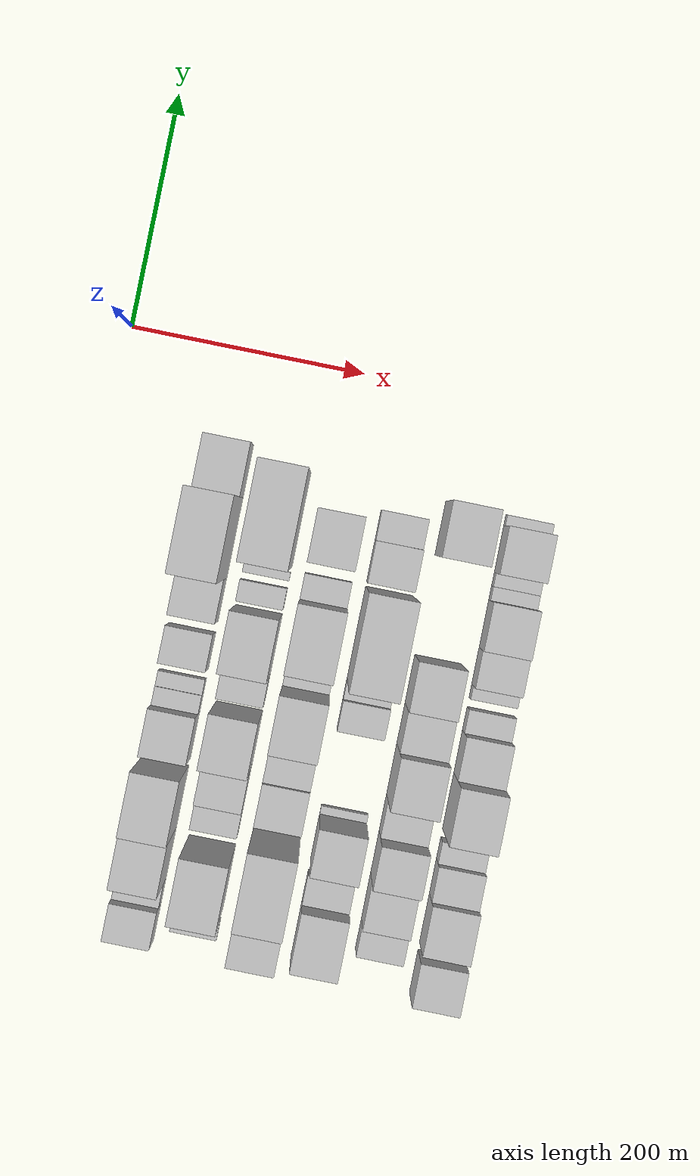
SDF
<sdf version="1.6">
 <world name="default">
  <model name="building_13">
   <static>1</static>
   <pose>100.0000 -486.7748 0 0.000000 0.000000 0.000000</pose>
   <link name="link">
    <pose>0 0 30.00 0 0 0</pose>
    <collision name="collision"><geometry><box><size>40.0000 31.7679 60.0000</size></box></geometry></collision>
    <visual name="visual">
     <cast_shadows>0</cast_shadows>
     <geometry><box><size>40.0000 31.7679 60.0000</size></box></geometry>
     <material>
      <script>
       <uri>model://HANNAS_wall/materials/scripts</uri>
       <uri>model://HANNAS_wall/materials/textures</uri>
       <name>vrc/HANNAS_wall</name>
      </script>
     </material>
    </visual>
   </link>
  </model>
  <model name="building_14">
   <static>1</static>
   <pose>100.0000 -460.5717 0 0.000000 0.000000 0.000000</pose>
   <link name="link">
    <pose>0 0 18.00 0 0 0</pose>
    <collision name="collision"><geometry><box><size>40.0000 20.6384 36.0000</size></box></geometry></collision>
    <visual name="visual">
     <cast_shadows>0</cast_shadows>
     <geometry><box><size>40.0000 20.6384 36.0000</size></box></geometry>
     <material>
      <script>
       <uri>model://HANNAS_wall/materials/scripts</uri>
       <uri>model://HANNAS_wall/materials/textures</uri>
       <name>vrc/HANNAS_wall</name>
      </script>
     </material>
    </visual>
   </link>
  </model>
  <model name="building_15">
   <static>1</static>
   <pose>100.0000 -428.2178 0 0.000000 0.000000 0.000000</pose>
   <link name="link">
    <pose>0 0 61.50 0 0 0</pose>
    <collision name="collision"><geometry><box><size>40.0000 44.0692 123.0000</size></box></geometry></collision>
    <visual name="visual">
     <cast_shadows>0</cast_shadows>
     <geometry><box><size>40.0000 44.0692 123.0000</size></box></geometry>
     <material>
      <script>
       <uri>model://HANNAS_wall/materials/scripts</uri>
       <uri>model://HANNAS_wall/materials/textures</uri>
       <name>vrc/HANNAS_wall</name>
      </script>
     </material>
    </visual>
   </link>
  </model>
  <model name="building_16">
   <static>1</static>
   <pose>100.0000 -379.6104 0 0.000000 0.000000 0.000000</pose>
   <link name="link">
    <pose>0 0 69.00 0 0 0</pose>
    <collision name="collision"><geometry><box><size>40.0000 53.1457 138.0000</size></box></geometry></collision>
    <visual name="visual">
     <cast_shadows>0</cast_shadows>
     <geometry><box><size>40.0000 53.1457 138.0000</size></box></geometry>
     <material>
      <script>
       <uri>model://HANNAS_wall/materials/scripts</uri>
       <uri>model://HANNAS_wall/materials/textures</uri>
       <name>vrc/HANNAS_wall</name>
      </script>
     </material>
    </visual>
   </link>
  </model>
  <model name="building_17">
   <static>1</static>
   <pose>100.0000 -327.0697 0 0.000000 0.000000 0.000000</pose>
   <link name="link">
    <pose>0 0 36.00 0 0 0</pose>
    <collision name="collision"><geometry><box><size>40.0000 39.9357 72.0000</size></box></geometry></collision>
    <visual name="visual">
     <cast_shadows>0</cast_shadows>
     <geometry><box><size>40.0000 39.9357 72.0000</size></box></geometry>
     <material>
      <script>
       <uri>model://HANNAS_wall/materials/scripts</uri>
       <uri>model://HANNAS_wall/materials/textures</uri>
       <name>vrc/HANNAS_wall</name>
      </script>
     </material>
    </visual>
   </link>
  </model>
  <model name="building_18">
   <static>1</static>
   <pose>100.0000 -299.0526 0 0.000000 0.000000 0.000000</pose>
   <link name="link">
    <pose>0 0 15.00 0 0 0</pose>
    <collision name="collision"><geometry><box><size>40.0000 16.0985 30.0000</size></box></geometry></collision>
    <visual name="visual">
     <cast_shadows>0</cast_shadows>
     <geometry><box><size>40.0000 16.0985 30.0000</size></box></geometry>
     <material>
      <script>
       <uri>model://HANNAS_wall/materials/scripts</uri>
       <uri>model://HANNAS_wall/materials/textures</uri>
       <name>vrc/HANNAS_wall</name>
      </script>
     </material>
    </visual>
   </link>
  </model>
  <model name="building_19">
   <static>1</static>
   <pose>100.0000 -284.4218 0 0.000000 0.000000 0.000000</pose>
   <link name="link">
    <pose>0 0 13.50 0 0 0</pose>
    <collision name="collision"><geometry><box><size>40.0000 13.1631 27.0000</size></box></geometry></collision>
    <visual name="visual">
     <cast_shadows>0</cast_shadows>
     <geometry><box><size>40.0000 13.1631 27.0000</size></box></geometry>
     <material>
      <script>
       <uri>model://HANNAS_wall/materials/scripts</uri>
       <uri>model://HANNAS_wall/materials/textures</uri>
       <name>vrc/HANNAS_wall</name>
      </script>
     </material>
    </visual>
   </link>
  </model>
  <model name="building_20">
   <static>1</static>
   <pose>100.0000 -253.9966 0 0.000000 0.000000 0.000000</pose>
   <link name="link">
    <pose>0 0 30.00 0 0 0</pose>
    <collision name="collision"><geometry><box><size>40.0000 31.6873 60.0000</size></box></geometry></collision>
    <visual name="visual">
     <cast_shadows>0</cast_shadows>
     <geometry><box><size>40.0000 31.6873 60.0000</size></box></geometry>
     <material>
      <script>
       <uri>model://HANNAS_wall/materials/scripts</uri>
       <uri>model://HANNAS_wall/materials/textures</uri>
       <name>vrc/HANNAS_wall</name>
      </script>
     </material>
    </visual>
   </link>
  </model>
  <model name="building_21">
   <static>1</static>
   <pose>100.0000 -210.6499 0 0.000000 0.000000 0.000000</pose>
   <link name="link">
    <pose>0 0 33.00 0 0 0</pose>
    <collision name="collision"><geometry><box><size>40.0000 37.0063 66.0000</size></box></geometry></collision>
    <visual name="visual">
     <cast_shadows>0</cast_shadows>
     <geometry><box><size>40.0000 37.0063 66.0000</size></box></geometry>
     <material>
      <script>
       <uri>model://HANNAS_wall/materials/scripts</uri>
       <uri>model://HANNAS_wall/materials/textures</uri>
       <name>vrc/HANNAS_wall</name>
      </script>
     </material>
    </visual>
   </link>
  </model>
  <model name="building_22">
   <static>1</static>
   <pose>100.0000 -157.4701 0 0.000000 0.000000 0.000000</pose>
   <link name="link">
    <pose>0 0 99.00 0 0 0</pose>
    <collision name="collision"><geometry><box><size>40.0000 69.3533 198.0000</size></box></geometry></collision>
    <visual name="visual">
     <cast_shadows>0</cast_shadows>
     <geometry><box><size>40.0000 69.3533 198.0000</size></box></geometry>
     <material>
      <script>
       <uri>model://HANNAS_wall/materials/scripts</uri>
       <uri>model://HANNAS_wall/materials/textures</uri>
       <name>vrc/HANNAS_wall</name>
      </script>
     </material>
    </visual>
   </link>
  </model>
  <model name="building_23">
   <static>1</static>
   <pose>100.0000 -100.0852 0 0.000000 0.000000 0.000000</pose>
   <link name="link">
    <pose>0 0 40.50 0 0 0</pose>
    <collision name="collision"><geometry><box><size>40.0000 45.4164 81.0000</size></box></geometry></collision>
    <visual name="visual">
     <cast_shadows>0</cast_shadows>
     <geometry><box><size>40.0000 45.4164 81.0000</size></box></geometry>
     <material>
      <script>
       <uri>model://HANNAS_wall/materials/scripts</uri>
       <uri>model://HANNAS_wall/materials/textures</uri>
       <name>vrc/HANNAS_wall</name>
      </script>
     </material>
    </visual>
   </link>
  </model>
  <model name="building_61">
   <static>1</static>
   <pose>152.0000 -486.3163 0 0.000000 0.000000 0.000000</pose>
   <link name="link">
    <pose>0 0 9.00 0 0 0</pose>
    <collision name="collision"><geometry><box><size>40.0000 8.8012 18.0000</size></box></geometry></collision>
    <visual name="visual">
     <cast_shadows>0</cast_shadows>
     <geometry><box><size>40.0000 8.8012 18.0000</size></box></geometry>
     <material>
      <script>
       <uri>model://HANNAS_wall/materials/scripts</uri>
       <uri>model://HANNAS_wall/materials/textures</uri>
       <name>vrc/HANNAS_wall</name>
      </script>
     </material>
    </visual>
   </link>
  </model>
  <model name="building_62">
   <static>1</static>
   <pose>152.0000 -477.7149 0 0.000000 0.000000 0.000000</pose>
   <link name="link">
    <pose>0 0 9.00 0 0 0</pose>
    <collision name="collision"><geometry><box><size>40.0000 8.4016 18.0000</size></box></geometry></collision>
    <visual name="visual">
     <cast_shadows>0</cast_shadows>
     <geometry><box><size>40.0000 8.4016 18.0000</size></box></geometry>
     <material>
      <script>
       <uri>model://HANNAS_wall/materials/scripts</uri>
       <uri>model://HANNAS_wall/materials/textures</uri>
       <name>vrc/HANNAS_wall</name>
      </script>
     </material>
    </visual>
   </link>
  </model>
  <model name="building_63">
   <static>1</static>
   <pose>152.0000 -437.3317 0 0.000000 0.000000 0.000000</pose>
   <link name="link">
    <pose>0 0 76.50 0 0 0</pose>
    <collision name="collision"><geometry><box><size>40.0000 54.3647 153.0000</size></box></geometry></collision>
    <visual name="visual">
     <cast_shadows>0</cast_shadows>
     <geometry><box><size>40.0000 54.3647 153.0000</size></box></geometry>
     <material>
      <script>
       <uri>model://HANNAS_wall/materials/scripts</uri>
       <uri>model://HANNAS_wall/materials/textures</uri>
       <name>vrc/HANNAS_wall</name>
      </script>
     </material>
    </visual>
   </link>
  </model>
  <model name="building_64">
   <static>1</static>
   <pose>152.0000 -389.5674 0 0.000000 0.000000 0.000000</pose>
   <link name="link">
    <pose>0 0 19.50 0 0 0</pose>
    <collision name="collision"><geometry><box><size>40.0000 23.1638 39.0000</size></box></geometry></collision>
    <visual name="visual">
     <cast_shadows>0</cast_shadows>
     <geometry><box><size>40.0000 23.1638 39.0000</size></box></geometry>
     <material>
      <script>
       <uri>model://HANNAS_wall/materials/scripts</uri>
       <uri>model://HANNAS_wall/materials/textures</uri>
       <name>vrc/HANNAS_wall</name>
      </script>
     </material>
    </visual>
   </link>
  </model>
  <model name="building_65">
   <static>1</static>
   <pose>152.0000 -359.3392 0 0.000000 0.000000 0.000000</pose>
   <link name="link">
    <pose>0 0 31.50 0 0 0</pose>
    <collision name="collision"><geometry><box><size>40.0000 37.2927 63.0000</size></box></geometry></collision>
    <visual name="visual">
     <cast_shadows>0</cast_shadows>
     <geometry><box><size>40.0000 37.2927 63.0000</size></box></geometry>
     <material>
      <script>
       <uri>model://HANNAS_wall/materials/scripts</uri>
       <uri>model://HANNAS_wall/materials/textures</uri>
       <name>vrc/HANNAS_wall</name>
      </script>
     </material>
    </visual>
   </link>
  </model>
  <model name="building_66">
   <static>1</static>
   <pose>152.0000 -317.8724 0 0.000000 0.000000 0.000000</pose>
   <link name="link">
    <pose>0 0 73.50 0 0 0</pose>
    <collision name="collision"><geometry><box><size>40.0000 45.6409 147.0000</size></box></geometry></collision>
    <visual name="visual">
     <cast_shadows>0</cast_shadows>
     <geometry><box><size>40.0000 45.6409 147.0000</size></box></geometry>
     <material>
      <script>
       <uri>model://HANNAS_wall/materials/scripts</uri>
       <uri>model://HANNAS_wall/materials/textures</uri>
       <name>vrc/HANNAS_wall</name>
      </script>
     </material>
    </visual>
   </link>
  </model>
  <model name="building_67">
   <static>1</static>
   <pose>152.0000 -276.4728 0 0.000000 0.000000 0.000000</pose>
   <link name="link">
    <pose>0 0 24.00 0 0 0</pose>
    <collision name="collision"><geometry><box><size>40.0000 27.1582 48.0000</size></box></geometry></collision>
    <visual name="visual">
     <cast_shadows>0</cast_shadows>
     <geometry><box><size>40.0000 27.1582 48.0000</size></box></geometry>
     <material>
      <script>
       <uri>model://HANNAS_wall/materials/scripts</uri>
       <uri>model://HANNAS_wall/materials/textures</uri>
       <name>vrc/HANNAS_wall</name>
      </script>
     </material>
    </visual>
   </link>
  </model>
  <model name="building_68">
   <static>1</static>
   <pose>152.0000 -237.4848 0 0.000000 0.000000 0.000000</pose>
   <link name="link">
    <pose>0 0 75.00 0 0 0</pose>
    <collision name="collision"><geometry><box><size>40.0000 50.8178 150.0000</size></box></geometry></collision>
    <visual name="visual">
     <cast_shadows>0</cast_shadows>
     <geometry><box><size>40.0000 50.8178 150.0000</size></box></geometry>
     <material>
      <script>
       <uri>model://HANNAS_wall/materials/scripts</uri>
       <uri>model://HANNAS_wall/materials/textures</uri>
       <name>vrc/HANNAS_wall</name>
      </script>
     </material>
    </visual>
   </link>
  </model>
  <model name="building_69">
   <static>1</static>
   <pose>152.0000 -198.8668 0 0.000000 0.000000 0.000000</pose>
   <link name="link">
    <pose>0 0 18.00 0 0 0</pose>
    <collision name="collision"><geometry><box><size>40.0000 18.4183 36.0000</size></box></geometry></collision>
    <visual name="visual">
     <cast_shadows>0</cast_shadows>
     <geometry><box><size>40.0000 18.4183 36.0000</size></box></geometry>
     <material>
      <script>
       <uri>model://HANNAS_wall/materials/scripts</uri>
       <uri>model://HANNAS_wall/materials/textures</uri>
       <name>vrc/HANNAS_wall</name>
      </script>
     </material>
    </visual>
   </link>
  </model>
  <model name="building_70">
   <static>1</static>
   <pose>152.0000 -179.9466 0 0.000000 0.000000 0.000000</pose>
   <link name="link">
    <pose>0 0 7.50 0 0 0</pose>
    <collision name="collision"><geometry><box><size>40.0000 7.4220 15.0000</size></box></geometry></collision>
    <visual name="visual">
     <cast_shadows>0</cast_shadows>
     <geometry><box><size>40.0000 7.4220 15.0000</size></box></geometry>
     <material>
      <script>
       <uri>model://HANNAS_wall/materials/scripts</uri>
       <uri>model://HANNAS_wall/materials/textures</uri>
       <name>vrc/HANNAS_wall</name>
      </script>
     </material>
    </visual>
   </link>
  </model>
  <model name="building_71">
   <static>1</static>
   <pose>152.0000 -131.5584 0 0.000000 0.000000 0.000000</pose>
   <link name="link">
    <pose>0 0 105.00 0 0 0</pose>
    <collision name="collision"><geometry><box><size>40.0000 81.3544 210.0000</size></box></geometry></collision>
    <visual name="visual">
     <cast_shadows>0</cast_shadows>
     <geometry><box><size>40.0000 81.3544 210.0000</size></box></geometry>
     <material>
      <script>
       <uri>model://HANNAS_wall/materials/scripts</uri>
       <uri>model://HANNAS_wall/materials/textures</uri>
       <name>vrc/HANNAS_wall</name>
      </script>
     </material>
    </visual>
   </link>
  </model>
  <model name="building_111">
   <static>1</static>
   <pose>204.0000 -474.1667 0 0.000000 0.000000 0.000000</pose>
   <link name="link">
    <pose>0 0 58.50 0 0 0</pose>
    <collision name="collision"><geometry><box><size>40.0000 38.9145 117.0000</size></box></geometry></collision>
    <visual name="visual">
     <cast_shadows>0</cast_shadows>
     <geometry><box><size>40.0000 38.9145 117.0000</size></box></geometry>
     <material>
      <script>
       <uri>model://HANNAS_wall/materials/scripts</uri>
       <uri>model://HANNAS_wall/materials/textures</uri>
       <name>vrc/HANNAS_wall</name>
      </script>
     </material>
    </visual>
   </link>
  </model>
  <model name="building_112">
   <static>1</static>
   <pose>204.0000 -423.0478 0 0.000000 0.000000 0.000000</pose>
   <link name="link">
    <pose>0 0 91.50 0 0 0</pose>
    <collision name="collision"><geometry><box><size>40.0000 63.3233 183.0000</size></box></geometry></collision>
    <visual name="visual">
     <cast_shadows>0</cast_shadows>
     <geometry><box><size>40.0000 63.3233 183.0000</size></box></geometry>
     <material>
      <script>
       <uri>model://HANNAS_wall/materials/scripts</uri>
       <uri>model://HANNAS_wall/materials/textures</uri>
       <name>vrc/HANNAS_wall</name>
      </script>
     </material>
    </visual>
   </link>
  </model>
  <model name="building_113">
   <static>1</static>
   <pose>204.0000 -367.1150 0 0.000000 0.000000 0.000000</pose>
   <link name="link">
    <pose>0 0 34.50 0 0 0</pose>
    <collision name="collision"><geometry><box><size>40.0000 36.5424 69.0000</size></box></geometry></collision>
    <visual name="visual">
     <cast_shadows>0</cast_shadows>
     <geometry><box><size>40.0000 36.5424 69.0000</size></box></geometry>
     <material>
      <script>
       <uri>model://HANNAS_wall/materials/scripts</uri>
       <uri>model://HANNAS_wall/materials/textures</uri>
       <name>vrc/HANNAS_wall</name>
      </script>
     </material>
    </visual>
   </link>
  </model>
  <model name="building_114">
   <static>1</static>
   <pose>204.0000 -333.5239 0 0.000000 0.000000 0.000000</pose>
   <link name="link">
    <pose>0 0 30.00 0 0 0</pose>
    <collision name="collision"><geometry><box><size>40.0000 30.6398 60.0000</size></box></geometry></collision>
    <visual name="visual">
     <cast_shadows>0</cast_shadows>
     <geometry><box><size>40.0000 30.6398 60.0000</size></box></geometry>
     <material>
      <script>
       <uri>model://HANNAS_wall/materials/scripts</uri>
       <uri>model://HANNAS_wall/materials/textures</uri>
       <name>vrc/HANNAS_wall</name>
      </script>
     </material>
    </visual>
   </link>
  </model>
  <model name="building_115">
   <static>1</static>
   <pose>204.0000 -294.1457 0 0.000000 0.000000 0.000000</pose>
   <link name="link">
    <pose>0 0 72.00 0 0 0</pose>
    <collision name="collision"><geometry><box><size>40.0000 48.1165 144.0000</size></box></geometry></collision>
    <visual name="visual">
     <cast_shadows>0</cast_shadows>
     <geometry><box><size>40.0000 48.1165 144.0000</size></box></geometry>
     <material>
      <script>
       <uri>model://HANNAS_wall/materials/scripts</uri>
       <uri>model://HANNAS_wall/materials/textures</uri>
       <name>vrc/HANNAS_wall</name>
      </script>
     </material>
    </visual>
   </link>
  </model>
  <model name="building_116">
   <static>1</static>
   <pose>204.0000 -265.5791 0 0.000000 0.000000 0.000000</pose>
   <link name="link">
    <pose>0 0 10.50 0 0 0</pose>
    <collision name="collision"><geometry><box><size>40.0000 9.0169 21.0000</size></box></geometry></collision>
    <visual name="visual">
     <cast_shadows>0</cast_shadows>
     <geometry><box><size>40.0000 9.0169 21.0000</size></box></geometry>
     <material>
      <script>
       <uri>model://HANNAS_wall/materials/scripts</uri>
       <uri>model://HANNAS_wall/materials/textures</uri>
       <name>vrc/HANNAS_wall</name>
      </script>
     </material>
    </visual>
   </link>
  </model>
  <model name="building_117">
   <static>1</static>
   <pose>204.0000 -225.0028 0 0.000000 0.000000 0.000000</pose>
   <link name="link">
    <pose>0 0 73.50 0 0 0</pose>
    <collision name="collision"><geometry><box><size>40.0000 58.1357 147.0000</size></box></geometry></collision>
    <visual name="visual">
     <cast_shadows>0</cast_shadows>
     <geometry><box><size>40.0000 58.1357 147.0000</size></box></geometry>
     <material>
      <script>
       <uri>model://HANNAS_wall/materials/scripts</uri>
       <uri>model://HANNAS_wall/materials/textures</uri>
       <name>vrc/HANNAS_wall</name>
      </script>
     </material>
    </visual>
   </link>
  </model>
  <model name="building_118">
   <static>1</static>
   <pose>204.0000 -184.9559 0 0.000000 0.000000 0.000000</pose>
   <link name="link">
    <pose>0 0 19.50 0 0 0</pose>
    <collision name="collision"><geometry><box><size>40.0000 21.9580 39.0000</size></box></geometry></collision>
    <visual name="visual">
     <cast_shadows>0</cast_shadows>
     <geometry><box><size>40.0000 21.9580 39.0000</size></box></geometry>
     <material>
      <script>
       <uri>model://HANNAS_wall/materials/scripts</uri>
       <uri>model://HANNAS_wall/materials/textures</uri>
       <name>vrc/HANNAS_wall</name>
      </script>
     </material>
    </visual>
   </link>
  </model>
  <model name="building_119">
   <static>1</static>
   <pose>204.0000 -141.3005 0 0.000000 0.000000 0.000000</pose>
   <link name="link">
    <pose>0 0 42.00 0 0 0</pose>
    <collision name="collision"><geometry><box><size>40.0000 45.3527 84.0000</size></box></geometry></collision>
    <visual name="visual">
     <cast_shadows>0</cast_shadows>
     <geometry><box><size>40.0000 45.3527 84.0000</size></box></geometry>
     <material>
      <script>
       <uri>model://HANNAS_wall/materials/scripts</uri>
       <uri>model://HANNAS_wall/materials/textures</uri>
       <name>vrc/HANNAS_wall</name>
      </script>
     </material>
    </visual>
   </link>
  </model>
  <model name="building_162">
   <static>1</static>
   <pose>256.0000 -468.5913 0 0.000000 0.000000 0.000000</pose>
   <link name="link">
    <pose>0 0 43.50 0 0 0</pose>
    <collision name="collision"><geometry><box><size>40.0000 50.0350 87.0000</size></box></geometry></collision>
    <visual name="visual">
     <cast_shadows>0</cast_shadows>
     <geometry><box><size>40.0000 50.0350 87.0000</size></box></geometry>
     <material>
      <script>
       <uri>model://HANNAS_wall/materials/scripts</uri>
       <uri>model://HANNAS_wall/materials/textures</uri>
       <name>vrc/HANNAS_wall</name>
      </script>
     </material>
    </visual>
   </link>
  </model>
  <model name="building_163">
   <static>1</static>
   <pose>256.0000 -431.2155 0 0.000000 0.000000 0.000000</pose>
   <link name="link">
    <pose>0 0 21.00 0 0 0</pose>
    <collision name="collision"><geometry><box><size>40.0000 24.7166 42.0000</size></box></geometry></collision>
    <visual name="visual">
     <cast_shadows>0</cast_shadows>
     <geometry><box><size>40.0000 24.7166 42.0000</size></box></geometry>
     <material>
      <script>
       <uri>model://HANNAS_wall/materials/scripts</uri>
       <uri>model://HANNAS_wall/materials/textures</uri>
       <name>vrc/HANNAS_wall</name>
      </script>
     </material>
    </visual>
   </link>
  </model>
  <model name="building_164">
   <static>1</static>
   <pose>256.0000 -389.2470 0 0.000000 0.000000 0.000000</pose>
   <link name="link">
    <pose>0 0 61.50 0 0 0</pose>
    <collision name="collision"><geometry><box><size>40.0000 39.2204 123.0000</size></box></geometry></collision>
    <visual name="visual">
     <cast_shadows>0</cast_shadows>
     <geometry><box><size>40.0000 39.2204 123.0000</size></box></geometry>
     <material>
      <script>
       <uri>model://HANNAS_wall/materials/scripts</uri>
       <uri>model://HANNAS_wall/materials/textures</uri>
       <name>vrc/HANNAS_wall</name>
      </script>
     </material>
    </visual>
   </link>
  </model>
  <model name="building_165">
   <static>1</static>
   <pose>256.0000 -366.1398 0 0.000000 0.000000 0.000000</pose>
   <link name="link">
    <pose>0 0 7.50 0 0 0</pose>
    <collision name="collision"><geometry><box><size>40.0000 6.9942 15.0000</size></box></geometry></collision>
    <visual name="visual">
     <cast_shadows>0</cast_shadows>
     <geometry><box><size>40.0000 6.9942 15.0000</size></box></geometry>
     <material>
      <script>
       <uri>model://HANNAS_wall/materials/scripts</uri>
       <uri>model://HANNAS_wall/materials/textures</uri>
       <name>vrc/HANNAS_wall</name>
      </script>
     </material>
    </visual>
   </link>
  </model>
  <model name="building_166">
   <static>1</static>
   <pose>256.0000 -283.6953 0 0.000000 0.000000 0.000000</pose>
   <link name="link">
    <pose>0 0 22.50 0 0 0</pose>
    <collision name="collision"><geometry><box><size>40.0000 25.9649 45.0000</size></box></geometry></collision>
    <visual name="visual">
     <cast_shadows>0</cast_shadows>
     <geometry><box><size>40.0000 25.9649 45.0000</size></box></geometry>
     <material>
      <script>
       <uri>model://HANNAS_wall/materials/scripts</uri>
       <uri>model://HANNAS_wall/materials/textures</uri>
       <name>vrc/HANNAS_wall</name>
      </script>
     </material>
    </visual>
   </link>
  </model>
  <model name="building_167">
   <static>1</static>
   <pose>256.0000 -262.3900 0 0.000000 0.000000 0.000000</pose>
   <link name="link">
    <pose>0 0 15.00 0 0 0</pose>
    <collision name="collision"><geometry><box><size>40.0000 16.6455 30.0000</size></box></geometry></collision>
    <visual name="visual">
     <cast_shadows>0</cast_shadows>
     <geometry><box><size>40.0000 16.6455 30.0000</size></box></geometry>
     <material>
      <script>
       <uri>model://HANNAS_wall/materials/scripts</uri>
       <uri>model://HANNAS_wall/materials/textures</uri>
       <name>vrc/HANNAS_wall</name>
      </script>
     </material>
    </visual>
   </link>
  </model>
  <model name="building_168">
   <static>1</static>
   <pose>256.0000 -214.6492 0 0.000000 0.000000 0.000000</pose>
   <link name="link">
    <pose>0 0 102.00 0 0 0</pose>
    <collision name="collision"><geometry><box><size>40.0000 78.8362 204.0000</size></box></geometry></collision>
    <visual name="visual">
     <cast_shadows>0</cast_shadows>
     <geometry><box><size>40.0000 78.8362 204.0000</size></box></geometry>
     <material>
      <script>
       <uri>model://HANNAS_wall/materials/scripts</uri>
       <uri>model://HANNAS_wall/materials/textures</uri>
       <name>vrc/HANNAS_wall</name>
      </script>
     </material>
    </visual>
   </link>
  </model>
  <model name="building_169">
   <static>1</static>
   <pose>256.0000 -153.4409 0 0.000000 0.000000 0.000000</pose>
   <link name="link">
    <pose>0 0 31.50 0 0 0</pose>
    <collision name="collision"><geometry><box><size>40.0000 35.5805 63.0000</size></box></geometry></collision>
    <visual name="visual">
     <cast_shadows>0</cast_shadows>
     <geometry><box><size>40.0000 35.5805 63.0000</size></box></geometry>
     <material>
      <script>
       <uri>model://HANNAS_wall/materials/scripts</uri>
       <uri>model://HANNAS_wall/materials/textures</uri>
       <name>vrc/HANNAS_wall</name>
      </script>
     </material>
    </visual>
   </link>
  </model>
  <model name="building_170">
   <static>1</static>
   <pose>256.0000 -122.8338 0 0.000000 0.000000 0.000000</pose>
   <link name="link">
    <pose>0 0 24.00 0 0 0</pose>
    <collision name="collision"><geometry><box><size>40.0000 25.6335 48.0000</size></box></geometry></collision>
    <visual name="visual">
     <cast_shadows>0</cast_shadows>
     <geometry><box><size>40.0000 25.6335 48.0000</size></box></geometry>
     <material>
      <script>
       <uri>model://HANNAS_wall/materials/scripts</uri>
       <uri>model://HANNAS_wall/materials/textures</uri>
       <name>vrc/HANNAS_wall</name>
      </script>
     </material>
    </visual>
   </link>
  </model>
  <model name="building_212">
   <static>1</static>
   <pose>308.0000 -462.9688 0 0.000000 0.000000 0.000000</pose>
   <link name="link">
    <pose>0 0 24.00 0 0 0</pose>
    <collision name="collision"><geometry><box><size>40.0000 25.6248 48.0000</size></box></geometry></collision>
    <visual name="visual">
     <cast_shadows>0</cast_shadows>
     <geometry><box><size>40.0000 25.6248 48.0000</size></box></geometry>
     <material>
      <script>
       <uri>model://HANNAS_wall/materials/scripts</uri>
       <uri>model://HANNAS_wall/materials/textures</uri>
       <name>vrc/HANNAS_wall</name>
      </script>
     </material>
    </visual>
   </link>
  </model>
  <model name="building_213">
   <static>1</static>
   <pose>308.0000 -430.5269 0 0.000000 0.000000 0.000000</pose>
   <link name="link">
    <pose>0 0 36.00 0 0 0</pose>
    <collision name="collision"><geometry><box><size>40.0000 39.2590 72.0000</size></box></geometry></collision>
    <visual name="visual">
     <cast_shadows>0</cast_shadows>
     <geometry><box><size>40.0000 39.2590 72.0000</size></box></geometry>
     <material>
      <script>
       <uri>model://HANNAS_wall/materials/scripts</uri>
       <uri>model://HANNAS_wall/materials/textures</uri>
       <name>vrc/HANNAS_wall</name>
      </script>
     </material>
    </visual>
   </link>
  </model>
  <model name="building_214">
   <static>1</static>
   <pose>308.0000 -392.7642 0 0.000000 0.000000 0.000000</pose>
   <link name="link">
    <pose>0 0 55.50 0 0 0</pose>
    <collision name="collision"><geometry><box><size>40.0000 36.2664 111.0000</size></box></geometry></collision>
    <visual name="visual">
     <cast_shadows>0</cast_shadows>
     <geometry><box><size>40.0000 36.2664 111.0000</size></box></geometry>
     <material>
      <script>
       <uri>model://HANNAS_wall/materials/scripts</uri>
       <uri>model://HANNAS_wall/materials/textures</uri>
       <name>vrc/HANNAS_wall</name>
      </script>
     </material>
    </visual>
   </link>
  </model>
  <model name="building_215">
   <static>1</static>
   <pose>308.0000 -359.0640 0 0.000000 0.000000 0.000000</pose>
   <link name="link">
    <pose>0 0 28.50 0 0 0</pose>
    <collision name="collision"><geometry><box><size>40.0000 31.1338 57.0000</size></box></geometry></collision>
    <visual name="visual">
     <cast_shadows>0</cast_shadows>
     <geometry><box><size>40.0000 31.1338 57.0000</size></box></geometry>
     <material>
      <script>
       <uri>model://HANNAS_wall/materials/scripts</uri>
       <uri>model://HANNAS_wall/materials/textures</uri>
       <name>vrc/HANNAS_wall</name>
      </script>
     </material>
    </visual>
   </link>
  </model>
  <model name="building_216">
   <static>1</static>
   <pose>308.0000 -321.6123 0 0.000000 0.000000 0.000000</pose>
   <link name="link">
    <pose>0 0 69.00 0 0 0</pose>
    <collision name="collision"><geometry><box><size>40.0000 43.7696 138.0000</size></box></geometry></collision>
    <visual name="visual">
     <cast_shadows>0</cast_shadows>
     <geometry><box><size>40.0000 43.7696 138.0000</size></box></geometry>
     <material>
      <script>
       <uri>model://HANNAS_wall/materials/scripts</uri>
       <uri>model://HANNAS_wall/materials/textures</uri>
       <name>vrc/HANNAS_wall</name>
      </script>
     </material>
    </visual>
   </link>
  </model>
  <model name="building_217">
   <static>1</static>
   <pose>308.0000 -282.4118 0 0.000000 0.000000 0.000000</pose>
   <link name="link">
    <pose>0 0 49.50 0 0 0</pose>
    <collision name="collision"><geometry><box><size>40.0000 34.6314 99.0000</size></box></geometry></collision>
    <visual name="visual">
     <cast_shadows>0</cast_shadows>
     <geometry><box><size>40.0000 34.6314 99.0000</size></box></geometry>
     <material>
      <script>
       <uri>model://HANNAS_wall/materials/scripts</uri>
       <uri>model://HANNAS_wall/materials/textures</uri>
       <name>vrc/HANNAS_wall</name>
      </script>
     </material>
    </visual>
   </link>
  </model>
  <model name="building_218">
   <static>1</static>
   <pose>308.0000 -244.2850 0 0.000000 0.000000 0.000000</pose>
   <link name="link">
    <pose>0 0 57.00 0 0 0</pose>
    <collision name="collision"><geometry><box><size>40.0000 41.6222 114.0000</size></box></geometry></collision>
    <visual name="visual">
     <cast_shadows>0</cast_shadows>
     <geometry><box><size>40.0000 41.6222 114.0000</size></box></geometry>
     <material>
      <script>
       <uri>model://HANNAS_wall/materials/scripts</uri>
       <uri>model://HANNAS_wall/materials/textures</uri>
       <name>vrc/HANNAS_wall</name>
      </script>
     </material>
    </visual>
   </link>
  </model>
  <model name="building_219">
   <static>1</static>
   <pose>308.0000 -115.0197 0 0.000000 0.000000 0.000000</pose>
   <link name="link">
    <pose>0 0 69.00 0 0 0</pose>
    <collision name="collision"><geometry><box><size>40.0000 46.3028 138.0000</size></box></geometry></collision>
    <visual name="visual">
     <cast_shadows>0</cast_shadows>
     <geometry><box><size>40.0000 46.3028 138.0000</size></box></geometry>
     <material>
      <script>
       <uri>model://HANNAS_wall/materials/scripts</uri>
       <uri>model://HANNAS_wall/materials/textures</uri>
       <name>vrc/HANNAS_wall</name>
      </script>
     </material>
    </visual>
   </link>
  </model>
  <model name="building_260">
   <static>1</static>
   <pose>360.0000 -485.1882 0 0.000000 0.000000 0.000000</pose>
   <link name="link">
    <pose>0 0 36.00 0 0 0</pose>
    <collision name="collision"><geometry><box><size>40.0000 36.9023 72.0000</size></box></geometry></collision>
    <visual name="visual">
     <cast_shadows>0</cast_shadows>
     <geometry><box><size>40.0000 36.9023 72.0000</size></box></geometry>
     <material>
      <script>
       <uri>model://HANNAS_wall/materials/scripts</uri>
       <uri>model://HANNAS_wall/materials/textures</uri>
       <name>vrc/HANNAS_wall</name>
      </script>
     </material>
    </visual>
   </link>
  </model>
  <model name="building_261">
   <static>1</static>
   <pose>360.0000 -439.6207 0 0.000000 0.000000 0.000000</pose>
   <link name="link">
    <pose>0 0 37.50 0 0 0</pose>
    <collision name="collision"><geometry><box><size>40.0000 42.2327 75.0000</size></box></geometry></collision>
    <visual name="visual">
     <cast_shadows>0</cast_shadows>
     <geometry><box><size>40.0000 42.2327 75.0000</size></box></geometry>
     <material>
      <script>
       <uri>model://HANNAS_wall/materials/scripts</uri>
       <uri>model://HANNAS_wall/materials/textures</uri>
       <name>vrc/HANNAS_wall</name>
      </script>
     </material>
    </visual>
   </link>
  </model>
  <model name="building_262">
   <static>1</static>
   <pose>360.0000 -403.5620 0 0.000000 0.000000 0.000000</pose>
   <link name="link">
    <pose>0 0 27.00 0 0 0</pose>
    <collision name="collision"><geometry><box><size>40.0000 29.8847 54.0000</size></box></geometry></collision>
    <visual name="visual">
     <cast_shadows>0</cast_shadows>
     <geometry><box><size>40.0000 29.8847 54.0000</size></box></geometry>
     <material>
      <script>
       <uri>model://HANNAS_wall/materials/scripts</uri>
       <uri>model://HANNAS_wall/materials/textures</uri>
       <name>vrc/HANNAS_wall</name>
      </script>
     </material>
    </visual>
   </link>
  </model>
  <model name="building_263">
   <static>1</static>
   <pose>360.0000 -379.2896 0 0.000000 0.000000 0.000000</pose>
   <link name="link">
    <pose>0 0 18.00 0 0 0</pose>
    <collision name="collision"><geometry><box><size>40.0000 18.6601 36.0000</size></box></geometry></collision>
    <visual name="visual">
     <cast_shadows>0</cast_shadows>
     <geometry><box><size>40.0000 18.6601 36.0000</size></box></geometry>
     <material>
      <script>
       <uri>model://HANNAS_wall/materials/scripts</uri>
       <uri>model://HANNAS_wall/materials/textures</uri>
       <name>vrc/HANNAS_wall</name>
      </script>
     </material>
    </visual>
   </link>
  </model>
  <model name="building_264">
   <static>1</static>
   <pose>360.0000 -338.9953 0 0.000000 0.000000 0.000000</pose>
   <link name="link">
    <pose>0 0 61.50 0 0 0</pose>
    <collision name="collision"><geometry><box><size>40.0000 47.9285 123.0000</size></box></geometry></collision>
    <visual name="visual">
     <cast_shadows>0</cast_shadows>
     <geometry><box><size>40.0000 47.9285 123.0000</size></box></geometry>
     <material>
      <script>
       <uri>model://HANNAS_wall/materials/scripts</uri>
       <uri>model://HANNAS_wall/materials/textures</uri>
       <name>vrc/HANNAS_wall</name>
      </script>
     </material>
    </visual>
   </link>
  </model>
  <model name="building_265">
   <static>1</static>
   <pose>360.0000 -296.5354 0 0.000000 0.000000 0.000000</pose>
   <link name="link">
    <pose>0 0 36.00 0 0 0</pose>
    <collision name="collision"><geometry><box><size>40.0000 36.9913 72.0000</size></box></geometry></collision>
    <visual name="visual">
     <cast_shadows>0</cast_shadows>
     <geometry><box><size>40.0000 36.9913 72.0000</size></box></geometry>
     <material>
      <script>
       <uri>model://HANNAS_wall/materials/scripts</uri>
       <uri>model://HANNAS_wall/materials/textures</uri>
       <name>vrc/HANNAS_wall</name>
      </script>
     </material>
    </visual>
   </link>
  </model>
  <model name="building_266">
   <static>1</static>
   <pose>360.0000 -267.9519 0 0.000000 0.000000 0.000000</pose>
   <link name="link">
    <pose>0 0 18.00 0 0 0</pose>
    <collision name="collision"><geometry><box><size>40.0000 20.1758 36.0000</size></box></geometry></collision>
    <visual name="visual">
     <cast_shadows>0</cast_shadows>
     <geometry><box><size>40.0000 20.1758 36.0000</size></box></geometry>
     <material>
      <script>
       <uri>model://HANNAS_wall/materials/scripts</uri>
       <uri>model://HANNAS_wall/materials/textures</uri>
       <name>vrc/HANNAS_wall</name>
      </script>
     </material>
    </visual>
   </link>
  </model>
  <model name="building_267">
   <static>1</static>
   <pose>360.0000 -244.3023 0 0.000000 0.000000 0.000000</pose>
   <link name="link">
    <pose>0 0 13.50 0 0 0</pose>
    <collision name="collision"><geometry><box><size>40.0000 11.1235 27.0000</size></box></geometry></collision>
    <visual name="visual">
     <cast_shadows>0</cast_shadows>
     <geometry><box><size>40.0000 11.1235 27.0000</size></box></geometry>
     <material>
      <script>
       <uri>model://HANNAS_wall/materials/scripts</uri>
       <uri>model://HANNAS_wall/materials/textures</uri>
       <name>vrc/HANNAS_wall</name>
      </script>
     </material>
    </visual>
   </link>
  </model>
  <model name="building_268">
   <static>1</static>
   <pose>360.0000 -222.8991 0 0.000000 0.000000 0.000000</pose>
   <link name="link">
    <pose>0 0 28.50 0 0 0</pose>
    <collision name="collision"><geometry><box><size>40.0000 31.6830 57.0000</size></box></geometry></collision>
    <visual name="visual">
     <cast_shadows>0</cast_shadows>
     <geometry><box><size>40.0000 31.6830 57.0000</size></box></geometry>
     <material>
      <script>
       <uri>model://HANNAS_wall/materials/scripts</uri>
       <uri>model://HANNAS_wall/materials/textures</uri>
       <name>vrc/HANNAS_wall</name>
      </script>
     </material>
    </visual>
   </link>
  </model>
  <model name="building_269">
   <static>1</static>
   <pose>360.0000 -186.5455 0 0.000000 0.000000 0.000000</pose>
   <link name="link">
    <pose>0 0 34.50 0 0 0</pose>
    <collision name="collision"><geometry><box><size>40.0000 41.0242 69.0000</size></box></geometry></collision>
    <visual name="visual">
     <cast_shadows>0</cast_shadows>
     <geometry><box><size>40.0000 41.0242 69.0000</size></box></geometry>
     <material>
      <script>
       <uri>model://HANNAS_wall/materials/scripts</uri>
       <uri>model://HANNAS_wall/materials/textures</uri>
       <name>vrc/HANNAS_wall</name>
      </script>
     </material>
    </visual>
   </link>
  </model>
  <model name="building_270">
   <static>1</static>
   <pose>360.0000 -160.0393 0 0.000000 0.000000 0.000000</pose>
   <link name="link">
    <pose>0 0 13.50 0 0 0</pose>
    <collision name="collision"><geometry><box><size>40.0000 11.9881 27.0000</size></box></geometry></collision>
    <visual name="visual">
     <cast_shadows>0</cast_shadows>
     <geometry><box><size>40.0000 11.9881 27.0000</size></box></geometry>
     <material>
      <script>
       <uri>model://HANNAS_wall/materials/scripts</uri>
       <uri>model://HANNAS_wall/materials/textures</uri>
       <name>vrc/HANNAS_wall</name>
      </script>
     </material>
    </visual>
   </link>
  </model>
  <model name="building_271">
   <static>1</static>
   <pose>360.0000 -148.3871 0 0.000000 0.000000 0.000000</pose>
   <link name="link">
    <pose>0 0 13.50 0 0 0</pose>
    <collision name="collision"><geometry><box><size>40.0000 11.3163 27.0000</size></box></geometry></collision>
    <visual name="visual">
     <cast_shadows>0</cast_shadows>
     <geometry><box><size>40.0000 11.3163 27.0000</size></box></geometry>
     <material>
      <script>
       <uri>model://HANNAS_wall/materials/scripts</uri>
       <uri>model://HANNAS_wall/materials/textures</uri>
       <name>vrc/HANNAS_wall</name>
      </script>
     </material>
    </visual>
   </link>
  </model>
  <model name="building_272">
   <static>1</static>
   <pose>360.0000 -122.5059 0 0.000000 0.000000 0.000000</pose>
   <link name="link">
    <pose>0 0 36.00 0 0 0</pose>
    <collision name="collision"><geometry><box><size>40.0000 40.4463 72.0000</size></box></geometry></collision>
    <visual name="visual">
     <cast_shadows>0</cast_shadows>
     <geometry><box><size>40.0000 40.4463 72.0000</size></box></geometry>
     <material>
      <script>
       <uri>model://HANNAS_wall/materials/scripts</uri>
       <uri>model://HANNAS_wall/materials/textures</uri>
       <name>vrc/HANNAS_wall</name>
      </script>
     </material>
    </visual>
   </link>
  </model>
  <model name="building_273">
   <static>1</static>
   <pose>360.0000 -97.6646 0 0.000000 0.000000 0.000000</pose>
   <link name="link">
    <pose>0 0 10.50 0 0 0</pose>
    <collision name="collision"><geometry><box><size>40.0000 9.2363 21.0000</size></box></geometry></collision>
    <visual name="visual">
     <cast_shadows>0</cast_shadows>
     <geometry><box><size>40.0000 9.2363 21.0000</size></box></geometry>
     <material>
      <script>
       <uri>model://HANNAS_wall/materials/scripts</uri>
       <uri>model://HANNAS_wall/materials/textures</uri>
       <name>vrc/HANNAS_wall</name>
      </script>
     </material>
    </visual>
   </link>
  </model>
 </world>
</sdf>
